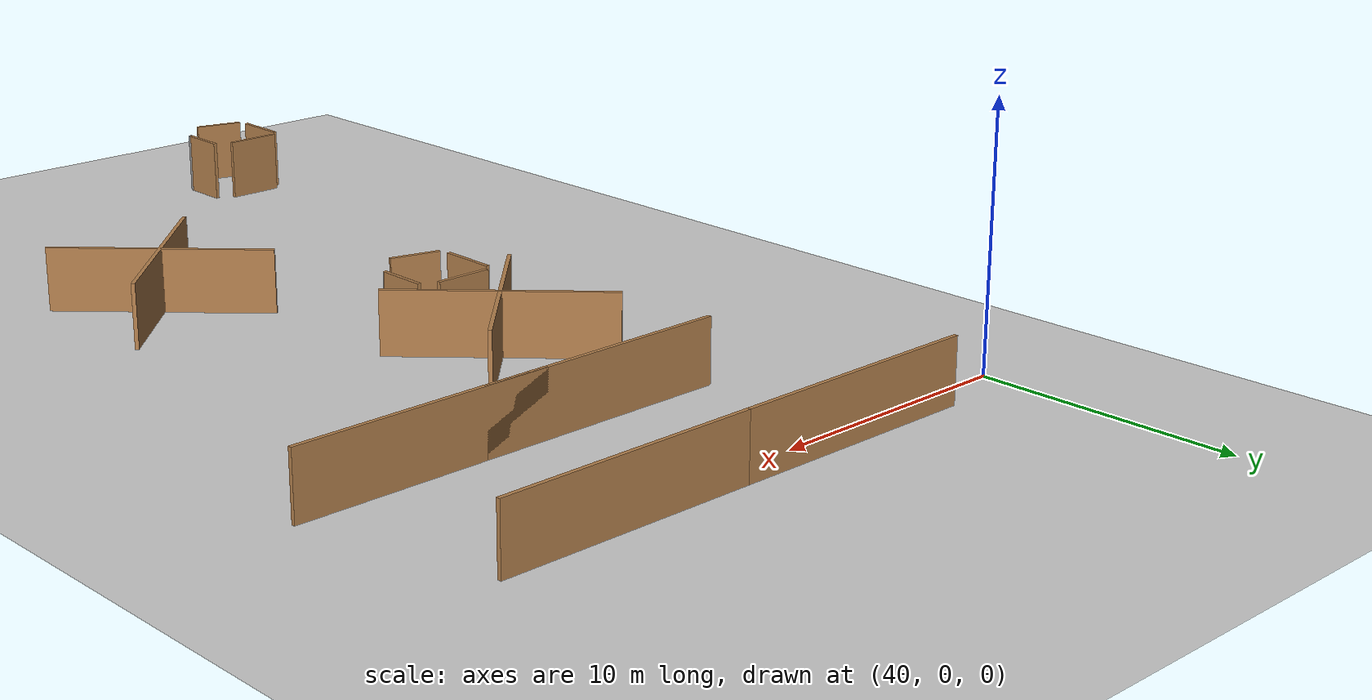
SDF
<sdf version="1.5">
 <world name="default">
  <model name="ground_plane">
   <static>1</static>
   <link name="link">
    <collision name="collision">
     <geometry><plane><normal>0 0 1</normal><size>100 100</size></plane></geometry>
     <surface><friction><ode><mu>100</mu><mu2>50</mu2></ode></friction></surface>
    </collision>
    <visual name="visual">
     <cast_shadows>0</cast_shadows>
     <geometry><plane><normal>0 0 1</normal><size>100 100</size></plane></geometry>
     <material>
      <script><uri>file://media/materials/scripts/gazebo.material</uri><name>Gazebo/Grey</name></script>
     </material>
    </visual>
   </link>
  </model>
  <model name="wall-10m-ofoghi_7">
   <pose>48 1 0 0 -0 0</pose>
   <link name="Wall_22">
    <collision name="Wall_22_Collision">
     <geometry><box><size>10 0.15 2.5</size></box></geometry>
     <pose>0 0 1.25 0 -0 0</pose>
    </collision>
    <visual name="Wall_22_Visual">
     <pose>0 0 1.25 0 -0 0</pose>
     <geometry><box><size>10 0.15 2.5</size></box></geometry>
     <material>
      <script><uri>file://media/materials/scripts/gazebo.material</uri><name>Gazebo/Wood</name></script>
      <ambient>1 1 1 1</ambient>
     </material>
    </visual>
   </link>
   <static>1</static>
  </model>
  <model name="wall-10m-ofoghi_8">
   <pose>58 1 0 0 -0 0</pose>
   <link name="Wall_22">
    <collision name="Wall_22_Collision">
     <geometry><box><size>10 0.15 2.5</size></box></geometry>
     <pose>0 0 1.25 0 -0 0</pose>
    </collision>
    <visual name="Wall_22_Visual">
     <pose>0 0 1.25 0 -0 0</pose>
     <geometry><box><size>10 0.15 2.5</size></box></geometry>
     <material>
      <script><uri>file://media/materials/scripts/gazebo.material</uri><name>Gazebo/Wood</name></script>
      <ambient>1 1 1 1</ambient>
     </material>
    </visual>
   </link>
   <static>1</static>
  </model>
  <model name="wall-10m-ofoghi_10">
   <pose>60 -6 0 0 -0 0</pose>
   <link name="Wall_22">
    <collision name="Wall_22_Collision">
     <geometry><box><size>10 0.15 2.5</size></box></geometry>
     <pose>0 0 1.25 0 -0 0</pose>
    </collision>
    <visual name="Wall_22_Visual">
     <pose>0 0 1.25 0 -0 0</pose>
     <geometry><box><size>10 0.15 2.5</size></box></geometry>
     <material>
      <script><uri>file://media/materials/scripts/gazebo.material</uri><name>Gazebo/Wood</name></script>
      <ambient>1 1 1 1</ambient>
     </material>
    </visual>
   </link>
   <static>1</static>
  </model>
  <model name="obs1_1">
   <pose>45 -39 0 0 -0 0</pose>
   <link name="Wall_10">
    <collision name="Wall_10_Collision">
     <geometry><box><size>2 0.15 2.5</size></box></geometry>
     <pose>0 0 1.25 0 -0 0</pose>
    </collision>
    <visual name="Wall_10_Visual">
     <pose>0 0 1.25 0 -0 0</pose>
     <geometry><box><size>2 0.15 2.5</size></box></geometry>
     <material>
      <script><uri>file://media/materials/scripts/gazebo.material</uri><name>Gazebo/Wood</name></script>
      <ambient>1 1 1 1</ambient>
     </material>
    </visual>
    <pose>-0.505188 -1.46687 0 0 0 -0.261799</pose>
   </link>
   <link name="Wall_2">
    <collision name="Wall_2_Collision">
     <geometry><box><size>2.25 0.15 2.5</size></box></geometry>
     <pose>0 0 1.25 0 -0 0</pose>
    </collision>
    <visual name="Wall_2_Visual">
     <pose>0 0 1.25 0 -0 0</pose>
     <geometry><box><size>2.25 0.15 2.5</size></box></geometry>
     <material>
      <script><uri>file://media/materials/scripts/gazebo.material</uri><name>Gazebo/Wood</name></script>
      <ambient>1 1 1 1</ambient>
     </material>
    </visual>
    <pose>-1.58039 0.313508 0 0 0 -1.5708</pose>
   </link>
   <link name="Wall_5">
    <collision name="Wall_5_Collision">
     <geometry><box><size>2.25 0.15 2.5</size></box></geometry>
     <pose>0 0 1.25 0 -0 0</pose>
    </collision>
    <visual name="Wall_5_Visual">
     <pose>0 0 1.25 0 -0 0</pose>
     <geometry><box><size>2.25 0.15 2.5</size></box></geometry>
     <material>
      <script><uri>file://media/materials/scripts/gazebo.material</uri><name>Gazebo/Wood</name></script>
      <ambient>1 1 1 1</ambient>
     </material>
    </visual>
    <pose>-0.185262 1.72313 0 0 -0 0</pose>
   </link>
   <link name="Wall_7">
    <collision name="Wall_7_Collision">
     <geometry><box><size>2 0.15 2.5</size></box></geometry>
     <pose>0 0 1.25 0 -0 0</pose>
    </collision>
    <visual name="Wall_7_Visual">
     <pose>0 0 1.25 0 -0 0</pose>
     <geometry><box><size>2 0.15 2.5</size></box></geometry>
     <material>
      <script><uri>file://media/materials/scripts/gazebo.material</uri><name>Gazebo/Wood</name></script>
      <ambient>1 1 1 1</ambient>
     </material>
    </visual>
    <pose>1.58039 0.398833 0 0 0 -1.5708</pose>
   </link>
   <link name="Wall_8">
    <collision name="Wall_8_Collision">
     <geometry><box><size>0.15 0.15 2.5</size></box></geometry>
     <pose>0 0 1.25 0 -0 0</pose>
    </collision>
    <visual name="Wall_8_Visual">
     <pose>0 0 1.25 0 -0 0</pose>
     <geometry><box><size>0.15 0.15 2.5</size></box></geometry>
     <material>
      <script><uri>file://media/materials/scripts/gazebo.material</uri><name>Gazebo/Grey</name></script>
      <ambient>1 1 1 1</ambient>
     </material>
    </visual>
    <pose>1.58039 -0.526167 0 0 -0 0</pose>
   </link>
   <static>1</static>
  </model>
  <model name="wall-10m-ofoghi_17">
   <pose>52.5652 -6 0 0 -0 0</pose>
   <link name="Wall_22">
    <collision name="Wall_22_Collision">
     <geometry><box><size>10 0.15 2.5</size></box></geometry>
     <pose>0 0 1.25 0 -0 0</pose>
    </collision>
    <visual name="Wall_22_Visual">
     <pose>0 0 1.25 0 -0 0</pose>
     <geometry><box><size>10 0.15 2.5</size></box></geometry>
     <material>
      <script><uri>file://media/materials/scripts/gazebo.material</uri><name>Gazebo/Wood</name></script>
      <ambient>1 1 1 1</ambient>
     </material>
    </visual>
   </link>
   <static>1</static>
  </model>
  <model name="obs1_7">
   <pose>51 -17 0 0 -0 0</pose>
   <link name="Wall_10">
    <collision name="Wall_10_Collision">
     <geometry><box><size>2 0.15 2.5</size></box></geometry>
     <pose>0 0 1.25 0 -0 0</pose>
    </collision>
    <visual name="Wall_10_Visual">
     <pose>0 0 1.25 0 -0 0</pose>
     <geometry><box><size>2 0.15 2.5</size></box></geometry>
     <material>
      <script><uri>file://media/materials/scripts/gazebo.material</uri><name>Gazebo/Wood</name></script>
      <ambient>1 1 1 1</ambient>
     </material>
    </visual>
    <pose>-0.505188 -1.46687 0 0 0 -0.261799</pose>
   </link>
   <link name="Wall_2">
    <collision name="Wall_2_Collision">
     <geometry><box><size>2.25 0.15 2.5</size></box></geometry>
     <pose>0 0 1.25 0 -0 0</pose>
    </collision>
    <visual name="Wall_2_Visual">
     <pose>0 0 1.25 0 -0 0</pose>
     <geometry><box><size>2.25 0.15 2.5</size></box></geometry>
     <material>
      <script><uri>file://media/materials/scripts/gazebo.material</uri><name>Gazebo/Wood</name></script>
      <ambient>1 1 1 1</ambient>
     </material>
    </visual>
    <pose>-1.58039 0.313508 0 0 0 -1.5708</pose>
   </link>
   <link name="Wall_5">
    <collision name="Wall_5_Collision">
     <geometry><box><size>2.25 0.15 2.5</size></box></geometry>
     <pose>0 0 1.25 0 -0 0</pose>
    </collision>
    <visual name="Wall_5_Visual">
     <pose>0 0 1.25 0 -0 0</pose>
     <geometry><box><size>2.25 0.15 2.5</size></box></geometry>
     <material>
      <script><uri>file://media/materials/scripts/gazebo.material</uri><name>Gazebo/Wood</name></script>
      <ambient>1 1 1 1</ambient>
     </material>
    </visual>
    <pose>-0.185262 1.72313 0 0 -0 0</pose>
   </link>
   <link name="Wall_7">
    <collision name="Wall_7_Collision">
     <geometry><box><size>2 0.15 2.5</size></box></geometry>
     <pose>0 0 1.25 0 -0 0</pose>
    </collision>
    <visual name="Wall_7_Visual">
     <pose>0 0 1.25 0 -0 0</pose>
     <geometry><box><size>2 0.15 2.5</size></box></geometry>
     <material>
      <script><uri>file://media/materials/scripts/gazebo.material</uri><name>Gazebo/Wood</name></script>
      <ambient>1 1 1 1</ambient>
     </material>
    </visual>
    <pose>1.58039 0.398833 0 0 0 -1.5708</pose>
   </link>
   <link name="Wall_8">
    <collision name="Wall_8_Collision">
     <geometry><box><size>0.15 0.15 2.5</size></box></geometry>
     <pose>0 0 1.25 0 -0 0</pose>
    </collision>
    <visual name="Wall_8_Visual">
     <pose>0 0 1.25 0 -0 0</pose>
     <geometry><box><size>0.15 0.15 2.5</size></box></geometry>
     <material>
      <script><uri>file://media/materials/scripts/gazebo.material</uri><name>Gazebo/Grey</name></script>
      <ambient>1 1 1 1</ambient>
     </material>
    </visual>
    <pose>1.58039 -0.526167 0 0 -0 0</pose>
   </link>
   <static>1</static>
  </model>
  <model name="obs3_9">
   <pose>51 -13 0 0 -0 0</pose>
   <link name="Wall_0">
    <collision name="Wall_0_Collision">
     <geometry><box><size>8.63528 0.15 2.5</size></box></geometry>
     <pose>0 0 1.25 0 -0 0</pose>
    </collision>
    <visual name="Wall_0_Visual">
     <pose>0 0 1.25 0 -0 0</pose>
     <geometry><box><size>8.63528 0.15 2.5</size></box></geometry>
     <material>
      <script><uri>file://media/materials/scripts/gazebo.material</uri><name>Gazebo/Wood</name></script>
      <ambient>1 1 1 1</ambient>
     </material>
    </visual>
    <pose>0 0 0 0 0 -0.785398</pose>
   </link>
   <link name="Wall_2">
    <collision name="Wall_2_Collision">
     <geometry><box><size>8.63528 0.15 2.5</size></box></geometry>
     <pose>0 0 1.25 0 -0 0</pose>
    </collision>
    <visual name="Wall_2_Visual">
     <pose>0 0 1.25 0 -0 0</pose>
     <geometry><box><size>8.63528 0.15 2.5</size></box></geometry>
     <material>
      <script><uri>file://media/materials/scripts/gazebo.material</uri><name>Gazebo/Wood</name></script>
      <ambient>1 1 1 1</ambient>
     </material>
    </visual>
    <pose>0 0 0 0 0 -2.35619</pose>
   </link>
   <static>1</static>
  </model>
  <model name="obs3_10">
   <pose>57 -25.5995 0 0 -0 0</pose>
   <link name="Wall_0">
    <collision name="Wall_0_Collision">
     <geometry><box><size>8.63528 0.15 2.5</size></box></geometry>
     <pose>0 0 1.25 0 -0 0</pose>
    </collision>
    <visual name="Wall_0_Visual">
     <pose>0 0 1.25 0 -0 0</pose>
     <geometry><box><size>8.63528 0.15 2.5</size></box></geometry>
     <material>
      <script><uri>file://media/materials/scripts/gazebo.material</uri><name>Gazebo/Wood</name></script>
      <ambient>1 1 1 1</ambient>
     </material>
    </visual>
    <pose>0 0 0 0 0 -0.785398</pose>
   </link>
   <link name="Wall_2">
    <collision name="Wall_2_Collision">
     <geometry><box><size>8.63528 0.15 2.5</size></box></geometry>
     <pose>0 0 1.25 0 -0 0</pose>
    </collision>
    <visual name="Wall_2_Visual">
     <pose>0 0 1.25 0 -0 0</pose>
     <geometry><box><size>8.63528 0.15 2.5</size></box></geometry>
     <material>
      <script><uri>file://media/materials/scripts/gazebo.material</uri><name>Gazebo/Wood</name></script>
      <ambient>1 1 1 1</ambient>
     </material>
    </visual>
    <pose>0 0 0 0 0 -2.35619</pose>
   </link>
   <static>1</static>
  </model>
 </world>
</sdf>
